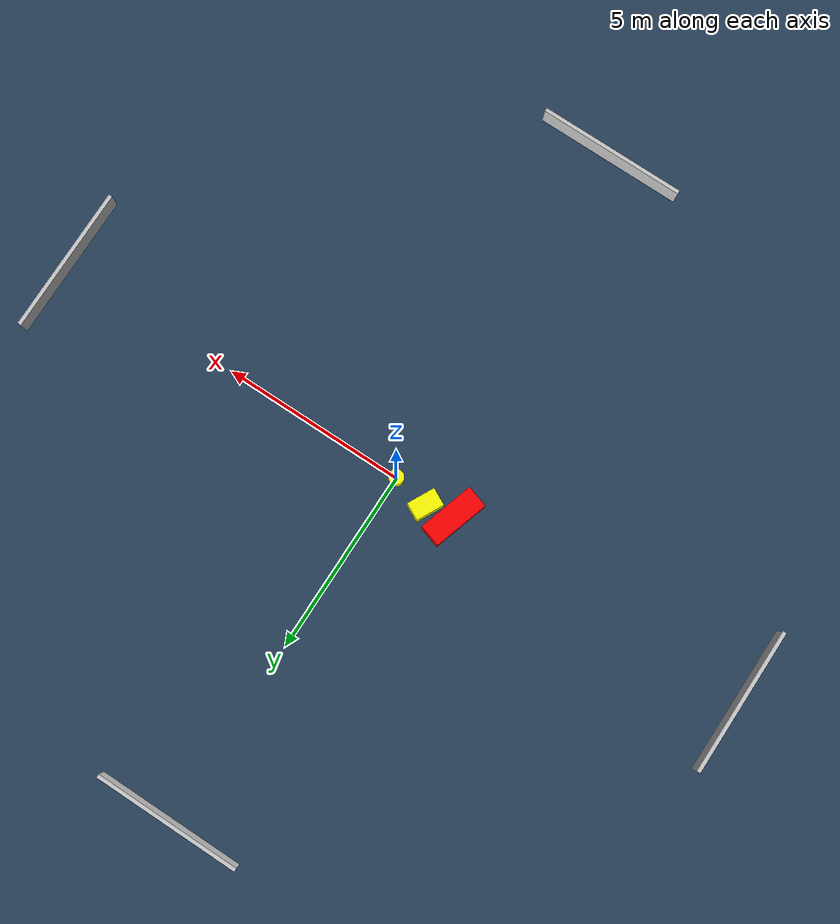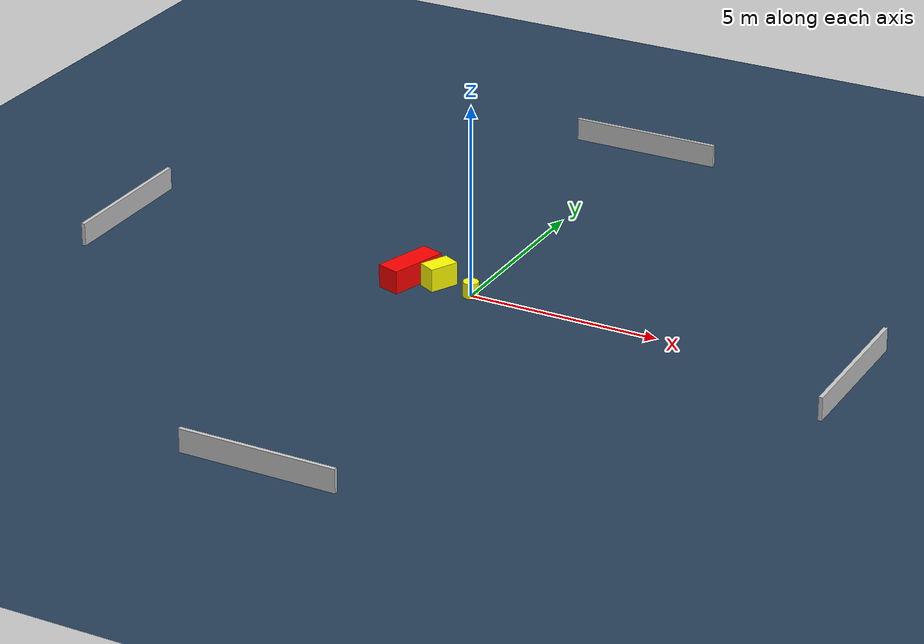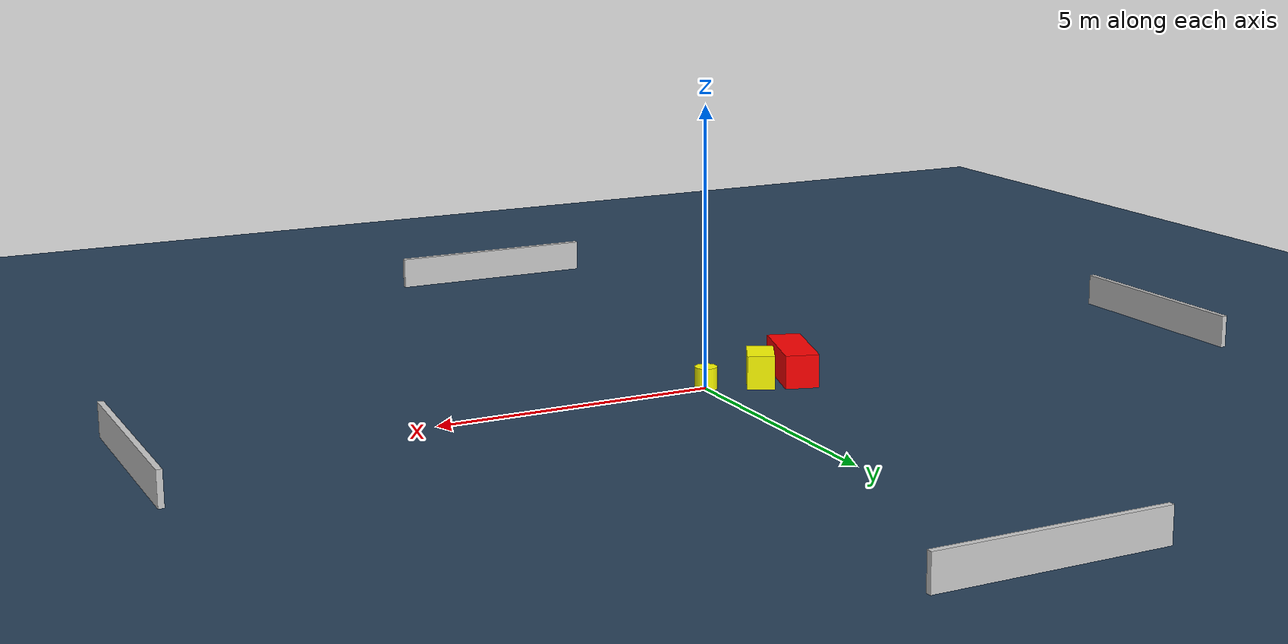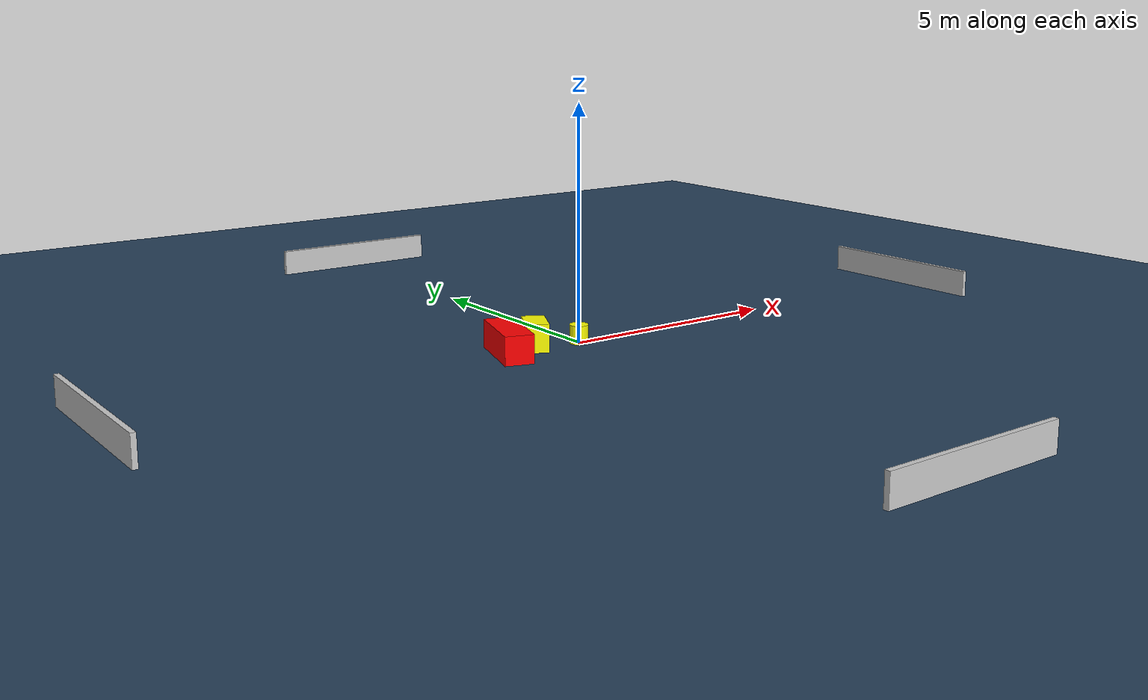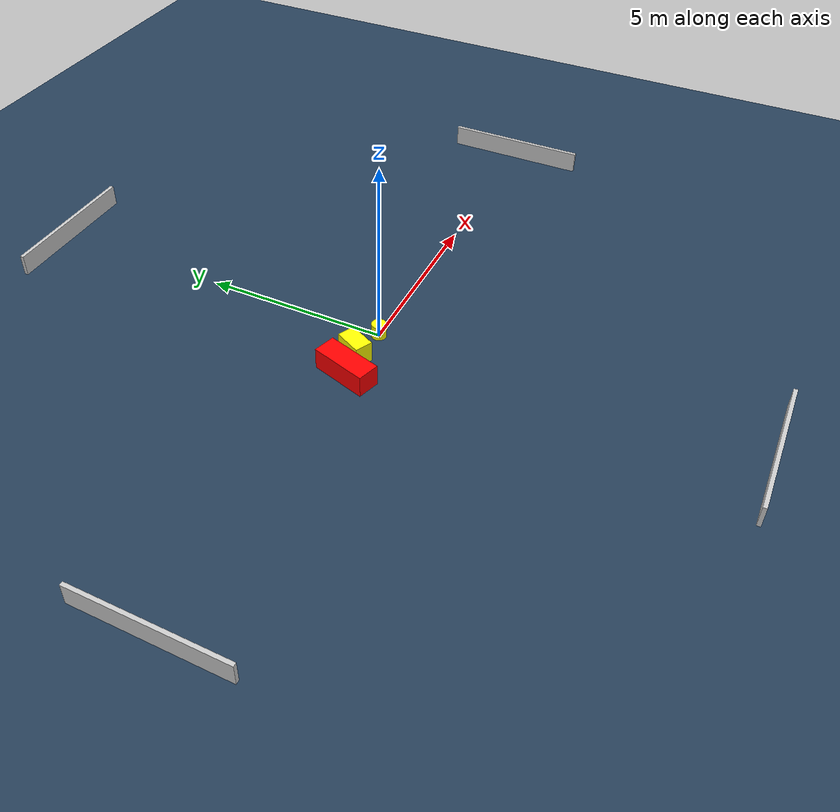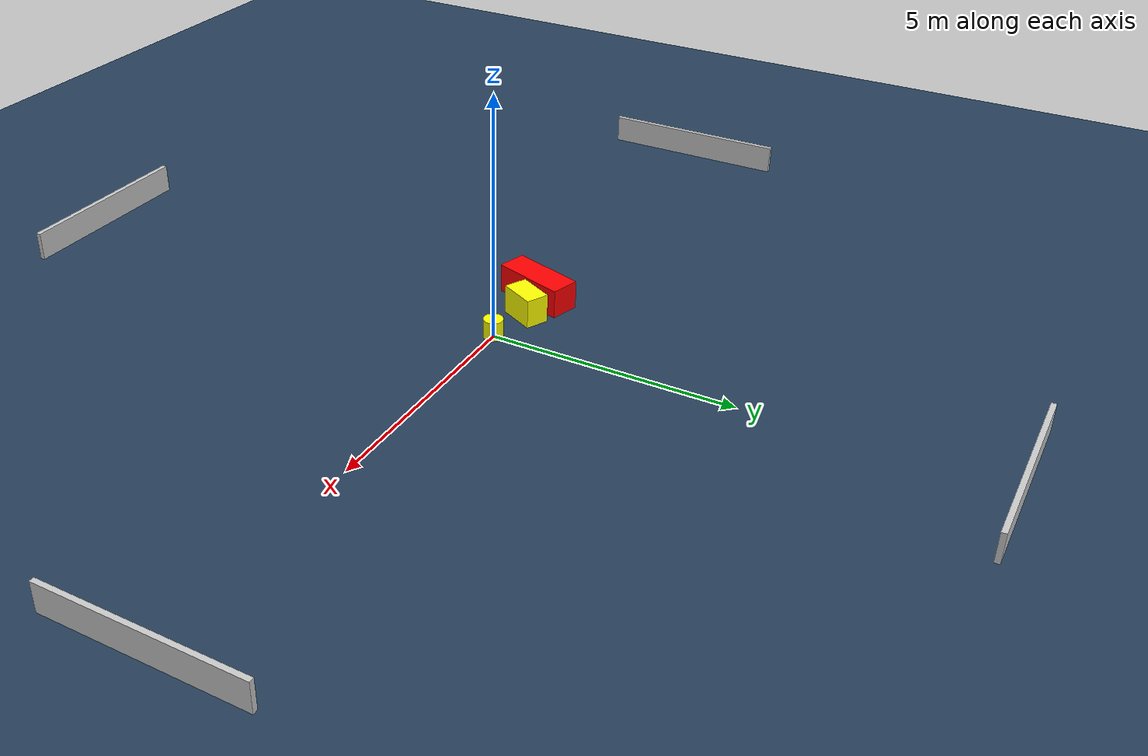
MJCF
<?xml version="1.0" ?>
<mujoco model="generated_environment">
  <option timestep="0.01" integrator="RK4" cone="elliptic"/>
  <default>
    <geom density="1"/>
  </default>
  <asset>
    <texture builtin="gradient" height="3072" name="skybox" rgb1="0.3 0.5 0.7" rgb2="0 0 0" type="skybox" width="512"/>
    <texture builtin="checker" height="300" name="groundplane" rgb1="0.2 0.3 0.4" rgb2="0.1 0.2 0.3" type="2d" width="300"/>
    <material name="groundplane" reflectance="0.2" texrepeat="5 5" texture="groundplane"/>
  </asset>
  <worldbody>
    <light dir="0 0 -1" directional="true" pos="0 0 1.5"/>
    <geom condim="3" friction="0.5 0.005 0.001" material="groundplane" name="floor" pos="0 0 0" size="0 0 0.05" type="plane"/>
    <body name="walls">
      <geom name="wall_1" condim="4" pos="-10.0 0.0 0.3" rgba="0.800000011920929 0.800000011920929 0.800000011920929 1.0" size="0.05 2.0 0.3" type="box"/>
      <geom name="wall_2" condim="4" pos="10.0 0.0 0.3" rgba="0.800000011920929 0.800000011920929 0.800000011920929 1.0" size="0.05 2.0 0.3" type="box"/>
      <geom name="wall_3" condim="4" pos="0.0 -10.0 0.3" rgba="0.800000011920929 0.800000011920929 0.800000011920929 1.0" size="2.0 0.05 0.3" type="box"/>
      <geom name="wall_4" condim="4" pos="0.0 10.0 0.3" rgba="0.800000011920929 0.800000011920929 0.800000011920929 1.0" size="2.0 0.05 0.3" type="box"/>
    </body>
    <body name="robot">
      <joint name="joint_x" type="slide" pos="0 0 0" axis="1 0 0"/>
      <joint name="joint_y" type="slide" pos="0 0 0" axis="0 1 0"/>
      <geom name="robot" type="cylinder" pos="0.0 0.0 0.2" size="0.2 0.2 0.0" mass="5.0" friction="1.0 0.005 0.0001" condim="4" rgba="1.0 1.0 0.0 1.0"/>
    </body>
    <body name="obstacle_1_movable">
      <geom name="obstacle_1_movable" condim="4" pos="-0.9847233454693444 0.18926093207494962 0.3" euler="0 0 153.0897384919108" friction="0.0 0.005 0.001" rgba="1.0 1.0 0.0 1.0" size="0.24120534399231494 0.3840352841915195 0.3" type="box" mass="0.1"/>
      <joint type="free"/>
    </body>
    <body name="obstacle_2_static">
      <geom name="obstacle_2_static" condim="4" pos="-1.7211246038799035 0.05711029572177356 0.3" euler="0 0 162.8418124601228" friction="0.0 0.005 0.001" rgba="1.0 0.0 0.0 1.0" size="0.30358777106506357 0.7679950361923589 0.3" type="box"/>
    </body>
  </worldbody>
  <actuator>
    <motor name="actuator_x" joint="joint_x" gear="1" ctrlrange="-1 1"/>
    <motor name="actuator_y" joint="joint_y" gear="1" ctrlrange="-1 1"/>
  </actuator>
</mujoco>
